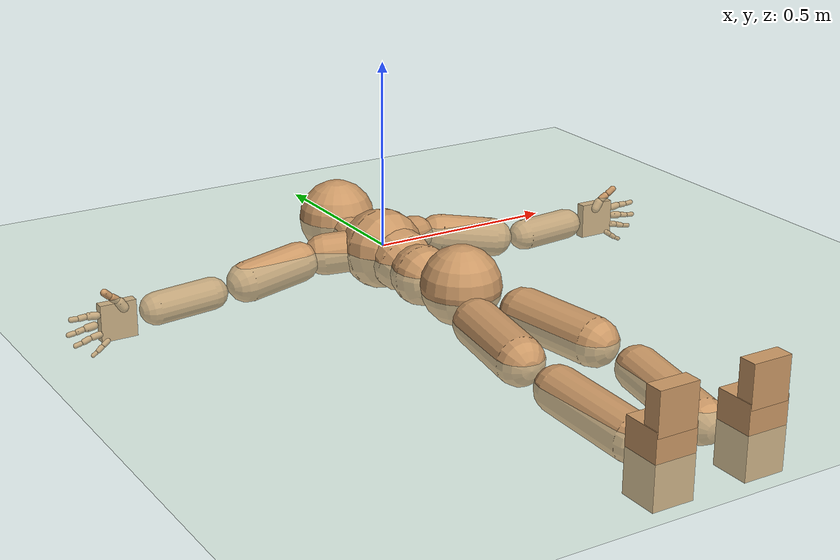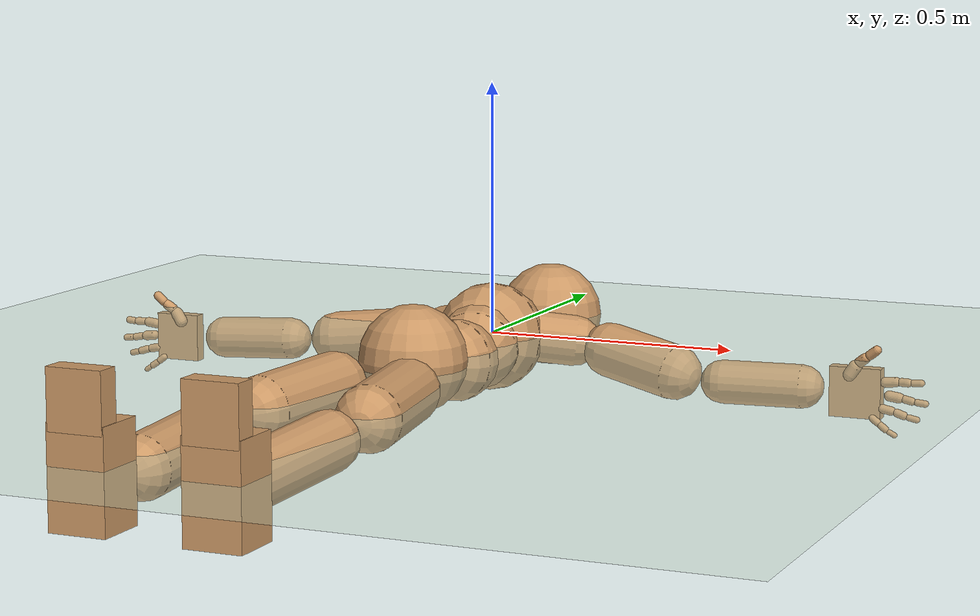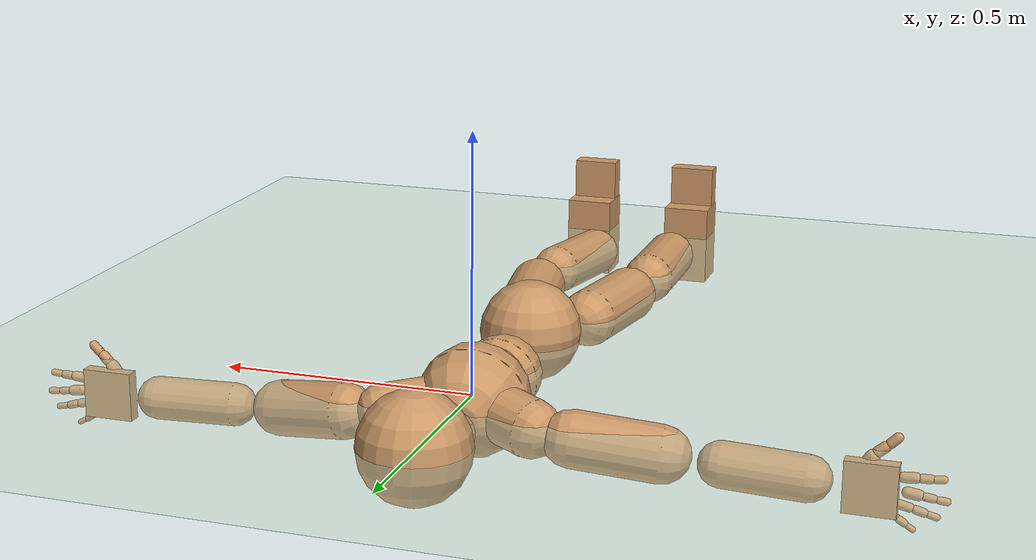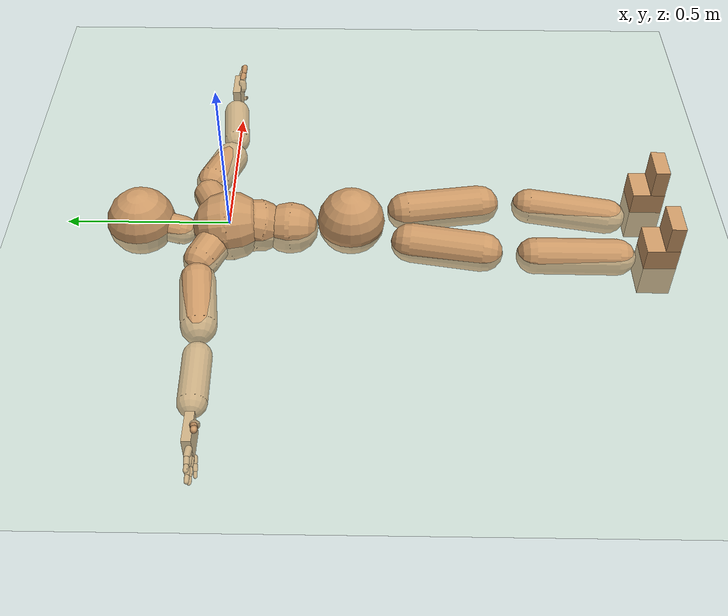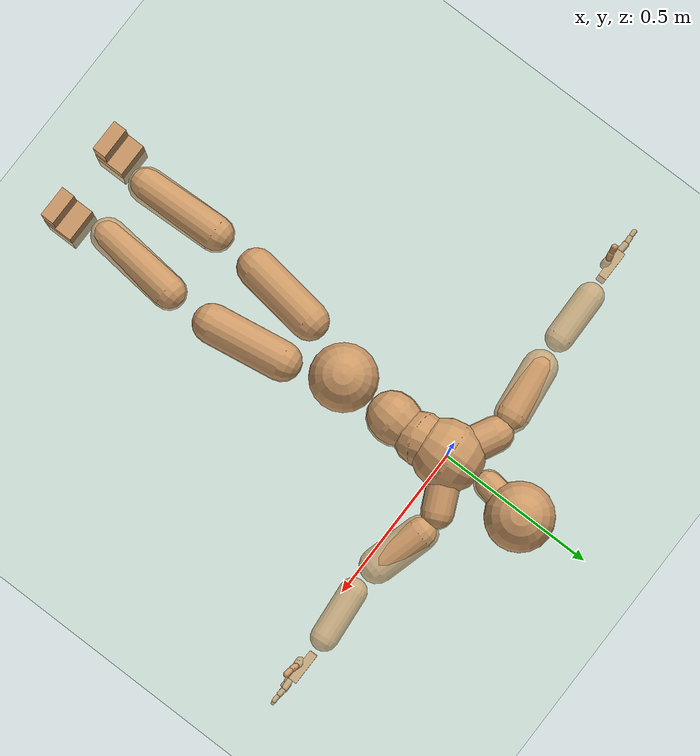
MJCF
<mujoco model="humanoid">
  <compiler coordinate="local"/>
  <default>
    <joint damping="0.0" armature="0.01" stiffness="0.0" limited="true"/>
    <geom conaffinity="1" condim="3" contype="7" margin="0.001" rgba="0.8 0.6 .4 1"/>
  </default>
  <asset>
    <texture type="skybox" builtin="gradient" rgb1=".4 .5 .6" rgb2="0 0 0" width="100" height="100"/>
    <texture builtin="flat" height="1278" mark="cross" markrgb="1 1 1" name="texgeom" random="0.01" rgb1="0.8 0.6 0.4" rgb2="0.8 0.6 0.4" type="cube" width="127"/>
    <texture builtin="checker" height="100" name="texplane" rgb1="0 0 0" rgb2="0.8 0.8 0.8" type="2d" width="100"/>
    <material name="MatPlane" reflectance="0.5" shininess="1" specular="1" texrepeat="60 60" texture="texplane"/>
    <material name="geom" texture="texgeom" texuniform="true"/>
  </asset>
  <worldbody>
    <light cutoff="100" diffuse="1 1 1" dir="-0 0 -1.3" directional="true" exponent="1" pos="0 0 1.3" specular=".1 .1 .1"/>
    <geom conaffinity="1" condim="3" name="floor" pos="0 0 0" rgba="0.8 0.9 0.8 1" size="100 100 .2" type="plane" material="MatPlane"/>
    <body name="Pelvis" pos="0.0029 -0.3765 0.0123">
      <freejoint name="Pelvis"/>
      <geom type="sphere" contype="1" conaffinity="1" density="4629.6296296296305" size="0.1033" pos="0.0000 0.0000 0.0000" name="Pelvis"/>
      <body name="L_Hip" pos="0.0578 -0.0965 -0.0238">
        <joint name="L_Hip_x" type="hinge" pos="0 0 0" axis="1 0 0" user="250 2.5 1 500 10 2" armature="0.01" range="-90.0000 90.0000" damping="0" stiffness="0"/>
        <joint name="L_Hip_y" type="hinge" pos="0 0 0" axis="0 1 0" user="250 2.5 1 500 10 2" armature="0.01" range="-90.0000 90.0000" damping="0" stiffness="0"/>
        <joint name="L_Hip_z" type="hinge" pos="0 0 0" axis="0 0 1" user="250 2.5 1 500 10 2" armature="0.01" range="-90.0000 90.0000" damping="0" stiffness="0"/>
        <geom type="capsule" contype="1" conaffinity="1" density="2040.816327" fromto="0.0122 -0.0764 -0.0005 0.0487 -0.3057 -0.0022" size="0.0608" name="L_Hip"/>
        <body name="L_Knee" pos="0.0609 -0.3821 -0.0027">
          <joint name="L_Knee_x" type="hinge" pos="0 0 0" axis="1 0 0" user="250 2.5 1 500 10 2" armature="0.01" range="-180.0000 180.0000" damping="0" stiffness="0"/>
          <joint name="L_Knee_y" type="hinge" pos="0 0 0" axis="0 1 0" user="250 2.5 1 500 10 2" armature="0.01" range="-5.6250 5.6250" damping="0" stiffness="0"/>
          <joint name="L_Knee_z" type="hinge" pos="0 0 0" axis="0 0 1" user="250 2.5 1 500 10 2" armature="0.01" range="-5.6250 5.6250" damping="0" stiffness="0"/>
          <geom type="capsule" contype="1" conaffinity="1" density="1234.567901" fromto="-0.0086 -0.0820 -0.0062 -0.0345 -0.3281 -0.0247" size="0.0543" name="L_Knee"/>
          <body name="L_Ankle" pos="-0.0431 -0.4101 -0.0309">
            <joint name="L_Ankle_x" type="hinge" pos="0 0 0" axis="1 0 0" user="150 2.5 1 500 10 2" armature="0.01" range="-90.0000 90.0000" damping="0" stiffness="0"/>
            <joint name="L_Ankle_y" type="hinge" pos="0 0 0" axis="0 1 0" user="150 2.5 1 500 10 2" armature="0.01" range="-90.0000 90.0000" damping="0" stiffness="0"/>
            <joint name="L_Ankle_z" type="hinge" pos="0 0 0" axis="0 0 1" user="150 2.5 1 500 10 2" armature="0.01" range="-90.0000 90.0000" damping="0" stiffness="0"/>
            <geom type="box" density="452.697464" pos="0.0427 -0.0296 0.0244" size="0.0522 0.0484 0.0892" quat="1.0000 0.0000 0.0000 0.0000" name="L_Ankle"/>
            <body name="L_Toe" pos="0.0495 -0.0599 0.1234">
              <joint name="L_Toe_x" type="hinge" pos="0 0 0" axis="1 0 0" user="150 1 1 500 1 1" armature="0.01" range="-90.0000 90.0000" damping="0" stiffness="0"/>
              <joint name="L_Toe_y" type="hinge" pos="0 0 0" axis="0 1 0" user="150 1 1 500 1 1" armature="0.01" range="-45.0000 45.0000" damping="0" stiffness="0"/>
              <joint name="L_Toe_z" type="hinge" pos="0 0 0" axis="0 0 1" user="150 1 1 500 1 1" armature="0.01" range="-45.0000 45.0000" damping="0" stiffness="0"/>
              <geom type="box" density="424.81663" pos="-0.0068 0.0034 0.0270" size="0.0501 0.0216 0.0521" quat="1.0000 0.0000 0.0000 0.0000" name="L_Toe"/>
            </body>
          </body>
        </body>
      </body>
      <body name="R_Hip" pos="-0.0626 -0.1093 -0.0175">
        <joint name="R_Hip_x" type="hinge" pos="0 0 0" axis="1 0 0" user="250 2.5 1 500 10 2" armature="0.01" range="-90.0000 90.0000" damping="0" stiffness="0"/>
        <joint name="R_Hip_y" type="hinge" pos="0 0 0" axis="0 1 0" user="250 2.5 1 500 10 2" armature="0.01" range="-90.0000 90.0000" damping="0" stiffness="0"/>
        <joint name="R_Hip_z" type="hinge" pos="0 0 0" axis="0 0 1" user="250 2.5 1 500 10 2" armature="0.01" range="-90.0000 90.0000" damping="0" stiffness="0"/>
        <geom type="capsule" contype="1" conaffinity="1" density="2040.816327" fromto="-0.0100 -0.0728 -0.0023 -0.0401 -0.2910 -0.0091" size="0.0601" name="R_Hip"/>
        <body name="R_Knee" pos="-0.0501 -0.3638 -0.0114">
          <joint name="R_Knee_x" type="hinge" pos="0 0 0" axis="1 0 0" user="250 2.5 1 500 10 2" armature="0.01" range="-180.0000 180.0000" damping="0" stiffness="0"/>
          <joint name="R_Knee_y" type="hinge" pos="0 0 0" axis="0 1 0" user="250 2.5 1 500 10 2" armature="0.01" range="-5.6250 5.6250" damping="0" stiffness="0"/>
          <joint name="R_Knee_z" type="hinge" pos="0 0 0" axis="0 0 1" user="250 2.5 1 500 10 2" armature="0.01" range="-5.6250 5.6250" damping="0" stiffness="0"/>
          <geom type="capsule" contype="1" conaffinity="1" density="1234.567901" fromto="0.0028 -0.0836 -0.0038 0.0111 -0.3346 -0.0152" size="0.0559" name="R_Knee"/>
          <body name="R_Ankle" pos="0.0139 -0.4182 -0.019">
            <joint name="R_Ankle_x" type="hinge" pos="0 0 0" axis="1 0 0" user="150 1 1 500 10 2" armature="0.01" range="-90.0000 90.0000" damping="0" stiffness="0"/>
            <joint name="R_Ankle_y" type="hinge" pos="0 0 0" axis="0 1 0" user="150 1 1 500 10 2" armature="0.01" range="-90.0000 90.0000" damping="0" stiffness="0"/>
            <joint name="R_Ankle_z" type="hinge" pos="0 0 0" axis="0 0 1" user="150 1 1 500 10 2" armature="0.01" range="-90.0000 90.0000" damping="0" stiffness="0"/>
            <geom type="box" density="452.699589" pos="-0.0253 -0.0270 0.0150" size="0.0522 0.0484 0.0892" quat="1.0000 0.0000 0.0000 0.0000" name="R_Ankle"/>
            <body name="R_Toe" pos="-0.0405 -0.06 0.1244">
              <joint name="R_Toe_x" type="hinge" pos="0 0 0" axis="1 0 0" user="150 1 1 500 1 1" armature="0.01" range="-90.0000 90.0000" damping="0" stiffness="0"/>
              <joint name="R_Toe_y" type="hinge" pos="0 0 0" axis="0 1 0" user="150 1 1 500 1 1" armature="0.01" range="-45.0000 45.0000" damping="0" stiffness="0"/>
              <joint name="R_Toe_z" type="hinge" pos="0 0 0" axis="0 0 1" user="150 1 1 500 1 1" armature="0.01" range="-45.0000 45.0000" damping="0" stiffness="0"/>
              <geom type="box" density="424.817701" pos="0.0152 0.0061 0.0166" size="0.0501 0.0216 0.0521" quat="1.0000 0.0000 0.0000 0.0000" name="R_Toe"/>
            </body>
          </body>
        </body>
      </body>
      <body name="Torso" pos="-0.0029 0.116 -0.0318">
        <joint name="Torso_x" type="hinge" pos="0 0 0" axis="1 0 0" user="500 5 1 500 10 2" armature="0.01" range="-60.0000 60.0000" damping="0" stiffness="0"/>
        <joint name="Torso_y" type="hinge" pos="0 0 0" axis="0 1 0" user="500 5 1 500 10 2" armature="0.01" range="-60.0000 60.0000" damping="0" stiffness="0"/>
        <joint name="Torso_z" type="hinge" pos="0 0 0" axis="0 0 1" user="500 5 1 500 10 2" armature="0.01" range="-60.0000 60.0000" damping="0" stiffness="0"/>
        <geom type="capsule" contype="1" conaffinity="1" density="2040.816327" fromto="0.0049 0.0653 -0.0033 0.0060 0.0798 -0.0041" size="0.0792" name="Torso"/>
        <body name="Spine" pos="0.0109 0.1451 -0.0074">
          <joint name="Spine_x" type="hinge" pos="0 0 0" axis="1 0 0" user="500 5 1 500 10 2" armature="0.01" range="-60.0000 60.0000" damping="0" stiffness="0"/>
          <joint name="Spine_y" type="hinge" pos="0 0 0" axis="0 1 0" user="500 5 1 500 10 2" armature="0.01" range="-60.0000 60.0000" damping="0" stiffness="0"/>
          <joint name="Spine_z" type="hinge" pos="0 0 0" axis="0 0 1" user="500 5 1 500 10 2" armature="0.01" range="-60.0000 60.0000" damping="0" stiffness="0"/>
          <geom type="capsule" contype="1" conaffinity="1" density="2040.816327" fromto="-0.0054 0.0262 0.0119 -0.0065 0.0320 0.0145" size="0.0822" name="Spine"/>
          <body name="Chest" pos="-0.0119 0.0582 0.0263">
            <joint name="Chest_x" type="hinge" pos="0 0 0" axis="1 0 0" user="500 5 1 500 10 2" armature="0.01" range="-60.0000 60.0000" damping="0" stiffness="0"/>
            <joint name="Chest_y" type="hinge" pos="0 0 0" axis="0 1 0" user="500 5 1 500 10 2" armature="0.01" range="-60.0000 60.0000" damping="0" stiffness="0"/>
            <joint name="Chest_z" type="hinge" pos="0 0 0" axis="0 0 1" user="500 5 1 500 10 2" armature="0.01" range="-60.0000 60.0000" damping="0" stiffness="0"/>
            <geom type="capsule" contype="1" conaffinity="1" density="2040.816327" fromto="-0.0024 0.0520 -0.0065 -0.0029 0.0635 -0.0080" size="0.1067" name="Chest"/>
            <body name="Neck" pos="-0.0133 0.1711 -0.0274">
              <joint name="Neck_x" type="hinge" pos="0 0 0" axis="1 0 0" user="150 1 1 250 50 4" armature="0.01" range="-180.0000 180.0000" damping="0" stiffness="0"/>
              <joint name="Neck_y" type="hinge" pos="0 0 0" axis="0 1 0" user="150 1 1 250 50 4" armature="0.01" range="-180.0000 180.0000" damping="0" stiffness="0"/>
              <joint name="Neck_z" type="hinge" pos="0 0 0" axis="0 0 1" user="150 1 1 250 50 4" armature="0.01" range="-180.0000 180.0000" damping="0" stiffness="0"/>
              <geom type="capsule" contype="1" conaffinity="1" density="1000" fromto="0.0053 0.0322 0.0047 0.0213 0.1288 0.0186" size="0.0447" name="Neck"/>
              <body name="Head" pos="0.0266 0.161 0.0233">
                <joint name="Head_x" type="hinge" pos="0 0 0" axis="1 0 0" user="150 1 1 250 50 4" armature="0.01" range="-90.0000 90.0000" damping="0" stiffness="0"/>
                <joint name="Head_y" type="hinge" pos="0 0 0" axis="0 1 0" user="150 1 1 250 50 4" armature="0.01" range="-90.0000 90.0000" damping="0" stiffness="0"/>
                <joint name="Head_z" type="hinge" pos="0 0 0" axis="0 0 1" user="150 1 1 250 50 4" armature="0.01" range="-90.0000 90.0000" damping="0" stiffness="0"/>
                <geom type="sphere" contype="1" conaffinity="1" density="1000" size="0.1053" pos="0.0000 0.0000 0.0000" name="Head"/>
              </body>
            </body>
            <body name="L_Thorax" pos="0.0475 0.0881 -0.0049">
              <joint name="L_Thorax_x" type="hinge" pos="0 0 0" axis="1 0 0" user="200 2 1 500 50 4" armature="0.01" range="-180.0000 180.0000" damping="0" stiffness="0"/>
              <joint name="L_Thorax_y" type="hinge" pos="0 0 0" axis="0 1 0" user="200 2 1 500 50 4" armature="0.01" range="-180.0000 180.0000" damping="0" stiffness="0"/>
              <joint name="L_Thorax_z" type="hinge" pos="0 0 0" axis="0 0 1" user="200 2 1 500 50 4" armature="0.01" range="-180.0000 180.0000" damping="0" stiffness="0"/>
              <geom type="capsule" contype="1" conaffinity="1" density="1000" fromto="0.0251 0.0118 -0.0034 0.1005 0.0471 -0.0137" size="0.0507" name="L_Thorax"/>
              <body name="L_Shoulder" pos="0.1256 0.0588 -0.0172">
                <joint name="L_Shoulder_x" type="hinge" pos="0 0 0" axis="1 0 0" user="200 2 1 500 50 4" armature="0.01" range="-180.0000 180.0000" damping="0" stiffness="0"/>
                <joint name="L_Shoulder_y" type="hinge" pos="0 0 0" axis="0 1 0" user="200 2 1 500 50 4" armature="0.01" range="-180.0000 180.0000" damping="0" stiffness="0"/>
                <joint name="L_Shoulder_z" type="hinge" pos="0 0 0" axis="0 0 1" user="200 2 1 500 50 4" armature="0.01" range="-180.0000 180.0000" damping="0" stiffness="0"/>
                <geom type="capsule" contype="1" conaffinity="1" density="1000" fromto="0.0507 -0.0142 -0.0088 0.2027 -0.0568 -0.0351" size="0.0541" name="L_Shoulder"/>
                <body name="L_Elbow" pos="0.2534 -0.071 -0.0439">
                  <joint name="L_Elbow_x" type="hinge" pos="0 0 0" axis="1 0 0" user="150 1 1 150 10 2" armature="0.01" range="-720.0000 720.0000" damping="0" stiffness="0"/>
                  <joint name="L_Elbow_y" type="hinge" pos="0 0 0" axis="0 1 0" user="150 1 1 150 10 2" armature="0.01" range="-720.0000 720.0000" damping="0" stiffness="0"/>
                  <joint name="L_Elbow_z" type="hinge" pos="0 0 0" axis="0 0 1" user="150 1 1 150 10 2" armature="0.01" range="-720.0000 720.0000" damping="0" stiffness="0"/>
                  <geom type="capsule" contype="1" conaffinity="1" density="1000" fromto="0.0519 0.0049 0.0001 0.2076 0.0194 0.0005" size="0.0425" name="L_Elbow"/>
                  <body name="L_Wrist" pos="0.2595 0.0243 0.0006">
                    <joint name="L_Wrist_x" type="hinge" pos="0 0 0" axis="1 0 0" user="100 1 1 150 1 1" armature="0.01" range="-180.0000 180.0000" damping="0" stiffness="0"/>
                    <joint name="L_Wrist_y" type="hinge" pos="0 0 0" axis="0 1 0" user="100 1 1 150 1 1" armature="0.01" range="-180.0000 180.0000" damping="0" stiffness="0"/>
                    <joint name="L_Wrist_z" type="hinge" pos="0 0 0" axis="0 0 1" user="100 1 1 150 1 1" armature="0.01" range="-180.0000 180.0000" damping="0" stiffness="0"/>
                    <geom type="box" density="1218.306123" pos="0.0546 -0.0013 -0.0026" size="0.0504 0.0131 0.0487" quat="1.0000 0.0000 0.0000 0.0000" name="L_Wrist"/>
                    <body name="L_Index1" pos="0.1061 -0.0081 0.021">
                      <joint name="L_Index1_x" type="hinge" pos="0 0 0" axis="1 0 0" user="100 10 1 150" armature="0.01" range="-180.0000 180.0000" damping="0" stiffness="0"/>
                      <joint name="L_Index1_y" type="hinge" pos="0 0 0" axis="0 1 0" user="100 10 1 150" armature="0.01" range="-180.0000 180.0000" damping="0" stiffness="0"/>
                      <joint name="L_Index1_z" type="hinge" pos="0 0 0" axis="0 0 1" user="100 10 1 150" armature="0.01" range="-180.0000 180.0000" damping="0" stiffness="0"/>
                      <geom type="capsule" contype="1" conaffinity="1" density="1000" fromto="0.0066 0.0005 0.0006 0.0264 0.0019 0.0024" size="0.0098" name="L_Index1"/>
                      <body name="L_Index2" pos="0.033 0.0024 0.0029">
                        <joint name="L_Index2_x" type="hinge" pos="0 0 0" axis="1 0 0" user="100 10 1 150" armature="0.01" range="-180.0000 180.0000" damping="0" stiffness="0"/>
                        <joint name="L_Index2_y" type="hinge" pos="0 0 0" axis="0 1 0" user="100 10 1 150" armature="0.01" range="-180.0000 180.0000" damping="0" stiffness="0"/>
                        <joint name="L_Index2_z" type="hinge" pos="0 0 0" axis="0 0 1" user="100 10 1 150" armature="0.01" range="-180.0000 180.0000" damping="0" stiffness="0"/>
                        <geom type="capsule" contype="1" conaffinity="1" density="1000" fromto="0.0046 -0.0005 -0.0001 0.0186 -0.0020 -0.0002" size="0.0081" name="L_Index2"/>
                        <body name="L_Index3" pos="0.0232 -0.0025 -0.0003">
                          <joint name="L_Index3_x" type="hinge" pos="0 0 0" axis="1 0 0" user="100 10 1 150" armature="0.01" range="-180.0000 180.0000" damping="0" stiffness="0"/>
                          <joint name="L_Index3_y" type="hinge" pos="0 0 0" axis="0 1 0" user="100 10 1 150" armature="0.01" range="-180.0000 180.0000" damping="0" stiffness="0"/>
                          <joint name="L_Index3_z" type="hinge" pos="0 0 0" axis="0 0 1" user="100 10 1 150" armature="0.01" range="-180.0000 180.0000" damping="0" stiffness="0"/>
                          <geom type="capsule" contype="1" conaffinity="1" density="1000" fromto="0.0050 -0.0001 0.0003 0.0202 -0.0004 0.0014" size="0.0068" name="L_Index3"/>
                        </body>
                      </body>
                    </body>
                    <body name="L_Middle1" pos="0.1141 -0.0058 -0.0038">
                      <joint name="L_Middle1_x" type="hinge" pos="0 0 0" axis="1 0 0" user="100 10 1 150" armature="0.01" range="-180.0000 180.0000" damping="0" stiffness="0"/>
                      <joint name="L_Middle1_y" type="hinge" pos="0 0 0" axis="0 1 0" user="100 10 1 150" armature="0.01" range="-180.0000 180.0000" damping="0" stiffness="0"/>
                      <joint name="L_Middle1_z" type="hinge" pos="0 0 0" axis="0 0 1" user="100 10 1 150" armature="0.01" range="-180.0000 180.0000" damping="0" stiffness="0"/>
                      <geom type="capsule" contype="1" conaffinity="1" density="1000" fromto="0.0063 0.0002 -0.0008 0.0253 0.0006 -0.0033" size="0.01" name="L_Middle1"/>
                      <body name="L_Middle2" pos="0.0317 0.0008 -0.0041">
                        <joint name="L_Middle2_x" type="hinge" pos="0 0 0" axis="1 0 0" user="100 10 1 150" armature="0.01" range="-180.0000 180.0000" damping="0" stiffness="0"/>
                        <joint name="L_Middle2_y" type="hinge" pos="0 0 0" axis="0 1 0" user="100 10 1 150" armature="0.01" range="-180.0000 180.0000" damping="0" stiffness="0"/>
                        <joint name="L_Middle2_z" type="hinge" pos="0 0 0" axis="0 0 1" user="100 10 1 150" armature="0.01" range="-180.0000 180.0000" damping="0" stiffness="0"/>
                        <geom type="capsule" contype="1" conaffinity="1" density="1000" fromto="0.0048 -0.0004 -0.0009 0.0193 -0.0018 -0.0035" size="0.0075" name="L_Middle2"/>
                        <body name="L_Middle3" pos="0.0242 -0.0022 -0.0043">
                          <joint name="L_Middle3_x" type="hinge" pos="0 0 0" axis="1 0 0" user="100 10 1 150" armature="0.01" range="-180.0000 180.0000" damping="0" stiffness="0"/>
                          <joint name="L_Middle3_y" type="hinge" pos="0 0 0" axis="0 1 0" user="100 10 1 150" armature="0.01" range="-180.0000 180.0000" damping="0" stiffness="0"/>
                          <joint name="L_Middle3_z" type="hinge" pos="0 0 0" axis="0 0 1" user="100 10 1 150" armature="0.01" range="-180.0000 180.0000" damping="0" stiffness="0"/>
                          <geom type="capsule" contype="1" conaffinity="1" density="1000" fromto="0.0052 -0.0000 -0.0005 0.0209 -0.0002 -0.0019" size="0.0065" name="L_Middle3"/>
                        </body>
                      </body>
                    </body>
                    <body name="L_Pinky1" pos="0.0879 -0.0144 -0.0459">
                      <joint name="L_Pinky1_x" type="hinge" pos="0 0 0" axis="1 0 0" user="100 10 1 150" armature="0.01" range="-180.0000 180.0000" damping="0" stiffness="0"/>
                      <joint name="L_Pinky1_y" type="hinge" pos="0 0 0" axis="0 1 0" user="100 10 1 150" armature="0.01" range="-180.0000 180.0000" damping="0" stiffness="0"/>
                      <joint name="L_Pinky1_z" type="hinge" pos="0 0 0" axis="0 0 1" user="100 10 1 150" armature="0.01" range="-180.0000 180.0000" damping="0" stiffness="0"/>
                      <geom type="capsule" contype="1" conaffinity="1" density="1000" fromto="0.0033 -0.0003 -0.0025 0.0133 -0.0011 -0.0100" size="0.0071" name="L_Pinky1"/>
                      <body name="L_Pinky2" pos="0.0166 -0.0013 -0.0125">
                        <joint name="L_Pinky2_x" type="hinge" pos="0 0 0" axis="1 0 0" user="100 10 1 150" armature="0.01" range="-180.0000 180.0000" damping="0" stiffness="0"/>
                        <joint name="L_Pinky2_y" type="hinge" pos="0 0 0" axis="0 1 0" user="100 10 1 150" armature="0.01" range="-180.0000 180.0000" damping="0" stiffness="0"/>
                        <joint name="L_Pinky2_z" type="hinge" pos="0 0 0" axis="0 0 1" user="100 10 1 150" armature="0.01" range="-180.0000 180.0000" damping="0" stiffness="0"/>
                        <geom type="capsule" contype="1" conaffinity="1" density="1000" fromto="0.0033 -0.0004 -0.0023 0.0131 -0.0016 -0.0092" size="0.0068" name="L_Pinky2"/>
                        <body name="L_Pinky3" pos="0.0164 -0.0019 -0.0115">
                          <joint name="L_Pinky3_x" type="hinge" pos="0 0 0" axis="1 0 0" user="100 10 1 150" armature="0.01" range="-180.0000 180.0000" damping="0" stiffness="0"/>
                          <joint name="L_Pinky3_y" type="hinge" pos="0 0 0" axis="0 1 0" user="100 10 1 150" armature="0.01" range="-180.0000 180.0000" damping="0" stiffness="0"/>
                          <joint name="L_Pinky3_z" type="hinge" pos="0 0 0" axis="0 0 1" user="100 10 1 150" armature="0.01" range="-180.0000 180.0000" damping="0" stiffness="0"/>
                          <geom type="capsule" contype="1" conaffinity="1" density="1000" fromto="0.0037 0.0000 -0.0019 0.0147 0.0000 -0.0076" size="0.0052" name="L_Pinky3"/>
                        </body>
                      </body>
                    </body>
                    <body name="L_Ring1" pos="0.1018 -0.0088 -0.0286">
                      <joint name="L_Ring1_x" type="hinge" pos="0 0 0" axis="1 0 0" user="100 10 1 150" armature="0.01" range="-180.0000 180.0000" damping="0" stiffness="0"/>
                      <joint name="L_Ring1_y" type="hinge" pos="0 0 0" axis="0 1 0" user="100 10 1 150" armature="0.01" range="-180.0000 180.0000" damping="0" stiffness="0"/>
                      <joint name="L_Ring1_z" type="hinge" pos="0 0 0" axis="0 0 1" user="100 10 1 150" armature="0.01" range="-180.0000 180.0000" damping="0" stiffness="0"/>
                      <geom type="capsule" contype="1" conaffinity="1" density="1000" fromto="0.0059 0.0003 -0.0011 0.0235 0.0012 -0.0044" size="0.0085" name="L_Ring1"/>
                      <body name="L_Ring2" pos="0.0294 0.0015 -0.0055">
                        <joint name="L_Ring2_x" type="hinge" pos="0 0 0" axis="1 0 0" user="100 10 1 150" armature="0.01" range="-180.0000 180.0000" damping="0" stiffness="0"/>
                        <joint name="L_Ring2_y" type="hinge" pos="0 0 0" axis="0 1 0" user="100 10 1 150" armature="0.01" range="-180.0000 180.0000" damping="0" stiffness="0"/>
                        <joint name="L_Ring2_z" type="hinge" pos="0 0 0" axis="0 0 1" user="100 10 1 150" armature="0.01" range="-180.0000 180.0000" damping="0" stiffness="0"/>
                        <geom type="capsule" contype="1" conaffinity="1" density="1000" fromto="0.0047 -0.0003 -0.0015 0.0190 -0.0014 -0.0059" size="0.0078" name="L_Ring2"/>
                        <body name="L_Ring3" pos="0.0237 -0.0017 -0.0074">
                          <joint name="L_Ring3_x" type="hinge" pos="0 0 0" axis="1 0 0" user="100 10 1 150" armature="0.01" range="-180.0000 180.0000" damping="0" stiffness="0"/>
                          <joint name="L_Ring3_y" type="hinge" pos="0 0 0" axis="0 1 0" user="100 10 1 150" armature="0.01" range="-180.0000 180.0000" damping="0" stiffness="0"/>
                          <joint name="L_Ring3_z" type="hinge" pos="0 0 0" axis="0 0 1" user="100 10 1 150" armature="0.01" range="-180.0000 180.0000" damping="0" stiffness="0"/>
                          <geom type="capsule" contype="1" conaffinity="1" density="1000" fromto="0.0051 0.0001 -0.0011 0.0206 0.0002 -0.0043" size="0.0061" name="L_Ring3"/>
                        </body>
                      </body>
                    </body>
                    <body name="L_Thumb1" pos="0.0422 -0.019 0.0279">
                      <joint name="L_Thumb1_x" type="hinge" pos="0 0 0" axis="1 0 0" user="100 10 1 150" armature="0.01" range="-180.0000 180.0000" damping="0" stiffness="0"/>
                      <joint name="L_Thumb1_y" type="hinge" pos="0 0 0" axis="0 1 0" user="100 10 1 150" armature="0.01" range="-180.0000 180.0000" damping="0" stiffness="0"/>
                      <joint name="L_Thumb1_z" type="hinge" pos="0 0 0" axis="0 0 1" user="100 10 1 150" armature="0.01" range="-180.0000 180.0000" damping="0" stiffness="0"/>
                      <geom type="capsule" contype="1" conaffinity="1" density="1000" fromto="0.0035 0.0003 0.0053 0.0141 0.0010 0.0212" size="0.0128" name="L_Thumb1"/>
                      <body name="L_Thumb2" pos="0.0177 0.0013 0.0265">
                        <joint name="L_Thumb2_x" type="hinge" pos="0 0 0" axis="1 0 0" user="100 10 1 150" armature="0.01" range="-180.0000 180.0000" damping="0" stiffness="0"/>
                        <joint name="L_Thumb2_y" type="hinge" pos="0 0 0" axis="0 1 0" user="100 10 1 150" armature="0.01" range="-180.0000 180.0000" damping="0" stiffness="0"/>
                        <joint name="L_Thumb2_z" type="hinge" pos="0 0 0" axis="0 0 1" user="100 10 1 150" armature="0.01" range="-180.0000 180.0000" damping="0" stiffness="0"/>
                        <geom type="capsule" contype="1" conaffinity="1" density="1000" fromto="0.0043 -0.0011 0.0032 0.0170 -0.0043 0.0129" size="0.0102" name="L_Thumb2"/>
                        <body name="L_Thumb3" pos="0.0213 -0.0054 0.0161">
                          <joint name="L_Thumb3_x" type="hinge" pos="0 0 0" axis="1 0 0" user="100 10 1 150" armature="0.01" range="-180.0000 180.0000" damping="0" stiffness="0"/>
                          <joint name="L_Thumb3_y" type="hinge" pos="0 0 0" axis="0 1 0" user="100 10 1 150" armature="0.01" range="-180.0000 180.0000" damping="0" stiffness="0"/>
                          <joint name="L_Thumb3_z" type="hinge" pos="0 0 0" axis="0 0 1" user="100 10 1 150" armature="0.01" range="-180.0000 180.0000" damping="0" stiffness="0"/>
                          <geom type="capsule" contype="1" conaffinity="1" density="1000" fromto="0.0047 -0.0007 0.0036 0.0186 -0.0027 0.0145" size="0.0092" name="L_Thumb3"/>
                        </body>
                      </body>
                    </body>
                  </body>
                </body>
              </body>
            </body>
            <body name="R_Thorax" pos="-0.0501 0.0874 -0.0111">
              <joint name="R_Thorax_x" type="hinge" pos="0 0 0" axis="1 0 0" user="200 2 1 150 10 2" armature="0.01" range="-180.0000 180.0000" damping="0" stiffness="0"/>
              <joint name="R_Thorax_y" type="hinge" pos="0 0 0" axis="0 1 0" user="200 2 1 150 10 2" armature="0.01" range="-180.0000 180.0000" damping="0" stiffness="0"/>
              <joint name="R_Thorax_z" type="hinge" pos="0 0 0" axis="0 0 1" user="200 2 1 150 10 2" armature="0.01" range="-180.0000 180.0000" damping="0" stiffness="0"/>
              <geom type="capsule" contype="1" conaffinity="1" density="1000" fromto="-0.0217 0.0108 -0.0028 -0.0868 0.0432 -0.0112" size="0.0557" name="R_Thorax"/>
              <body name="R_Shoulder" pos="-0.1085 0.054 -0.014">
                <joint name="R_Shoulder_x" type="hinge" pos="0 0 0" axis="1 0 0" user="200 2 1 250 10 2" armature="0.01" range="-180.0000 180.0000" damping="0" stiffness="0"/>
                <joint name="R_Shoulder_y" type="hinge" pos="0 0 0" axis="0 1 0" user="200 2 1 250 10 2" armature="0.01" range="-180.0000 180.0000" damping="0" stiffness="0"/>
                <joint name="R_Shoulder_z" type="hinge" pos="0 0 0" axis="0 0 1" user="200 2 1 250 10 2" armature="0.01" range="-180.0000 180.0000" damping="0" stiffness="0"/>
                <geom type="capsule" contype="1" conaffinity="1" density="1000" fromto="-0.0542 -0.0067 -0.0056 -0.2168 -0.0266 -0.0223" size="0.054" name="R_Shoulder"/>
                <body name="R_Elbow" pos="-0.271 -0.0333 -0.0278">
                  <joint name="R_Elbow_x" type="hinge" pos="0 0 0" axis="1 0 0" user="150 1 1 150 10 2" armature="0.01" range="-720.0000 720.0000" damping="0" stiffness="0"/>
                  <joint name="R_Elbow_y" type="hinge" pos="0 0 0" axis="0 1 0" user="150 1 1 150 10 2" armature="0.01" range="-720.0000 720.0000" damping="0" stiffness="0"/>
                  <joint name="R_Elbow_z" type="hinge" pos="0 0 0" axis="0 0 1" user="150 1 1 150 10 2" armature="0.01" range="-720.0000 720.0000" damping="0" stiffness="0"/>
                  <geom type="capsule" contype="1" conaffinity="1" density="1000" fromto="-0.0513 -0.0009 -0.0025 -0.2051 -0.0037 -0.0101" size="0.0429" name="R_Elbow"/>
                  <body name="R_Wrist" pos="-0.2564 -0.0047 -0.0126">
                    <joint name="R_Wrist_x" type="hinge" pos="0 0 0" axis="1 0 0" user="100 1 1 150 1 1" armature="0.01" range="-180.0000 180.0000" damping="0" stiffness="0"/>
                    <joint name="R_Wrist_y" type="hinge" pos="0 0 0" axis="0 1 0" user="100 1 1 150 1 1" armature="0.01" range="-180.0000 180.0000" damping="0" stiffness="0"/>
                    <joint name="R_Wrist_z" type="hinge" pos="0 0 0" axis="0 0 1" user="100 1 1 150 1 1" armature="0.01" range="-180.0000 180.0000" damping="0" stiffness="0"/>
                    <geom type="box" density="1243.718939" pos="-0.0559 -0.0046 -0.0024" size="0.0476 0.0131 0.0487" quat="1.0000 0.0000 0.0000 0.0000" name="R_Wrist"/>
                    <body name="R_Index1" pos="-0.1042 -0.0114 0.0211">
                      <joint name="R_Index1_x" type="hinge" pos="0 0 0" axis="1 0 0" user="100 10 1 150" armature="0.01" range="-180.0000 180.0000" damping="0" stiffness="0"/>
                      <joint name="R_Index1_y" type="hinge" pos="0 0 0" axis="0 1 0" user="100 10 1 150" armature="0.01" range="-180.0000 180.0000" damping="0" stiffness="0"/>
                      <joint name="R_Index1_z" type="hinge" pos="0 0 0" axis="0 0 1" user="100 10 1 150" armature="0.01" range="-180.0000 180.0000" damping="0" stiffness="0"/>
                      <geom type="capsule" contype="1" conaffinity="1" density="1000" fromto="-0.0066 0.0005 0.0006 -0.0264 0.0019 0.0024" size="0.0098" name="R_Index1"/>
                      <body name="R_Index2" pos="-0.033 0.0024 0.0029">
                        <joint name="R_Index2_x" type="hinge" pos="0 0 0" axis="1 0 0" user="100 10 1 150" armature="0.01" range="-180.0000 180.0000" damping="0" stiffness="0"/>
                        <joint name="R_Index2_y" type="hinge" pos="0 0 0" axis="0 1 0" user="100 10 1 150" armature="0.01" range="-180.0000 180.0000" damping="0" stiffness="0"/>
                        <joint name="R_Index2_z" type="hinge" pos="0 0 0" axis="0 0 1" user="100 10 1 150" armature="0.01" range="-180.0000 180.0000" damping="0" stiffness="0"/>
                        <geom type="capsule" contype="1" conaffinity="1" density="1000" fromto="-0.0046 -0.0005 -0.0001 -0.0186 -0.0020 -0.0002" size="0.0081" name="R_Index2"/>
                        <body name="R_Index3" pos="-0.0232 -0.0025 -0.0003">
                          <joint name="R_Index3_x" type="hinge" pos="0 0 0" axis="1 0 0" user="100 10 1 150" armature="0.01" range="-180.0000 180.0000" damping="0" stiffness="0"/>
                          <joint name="R_Index3_y" type="hinge" pos="0 0 0" axis="0 1 0" user="100 10 1 150" armature="0.01" range="-180.0000 180.0000" damping="0" stiffness="0"/>
                          <joint name="R_Index3_z" type="hinge" pos="0 0 0" axis="0 0 1" user="100 10 1 150" armature="0.01" range="-180.0000 180.0000" damping="0" stiffness="0"/>
                          <geom type="capsule" contype="1" conaffinity="1" density="1000" fromto="-0.0042 -0.0001 0.0003 -0.0170 -0.0004 0.0014" size="0.0071" name="R_Index3"/>
                        </body>
                      </body>
                    </body>
                    <body name="R_Middle1" pos="-0.1121 -0.009 -0.0036">
                      <joint name="R_Middle1_x" type="hinge" pos="0 0 0" axis="1 0 0" user="100 10 1 150" armature="0.01" range="-180.0000 180.0000" damping="0" stiffness="0"/>
                      <joint name="R_Middle1_y" type="hinge" pos="0 0 0" axis="0 1 0" user="100 10 1 150" armature="0.01" range="-180.0000 180.0000" damping="0" stiffness="0"/>
                      <joint name="R_Middle1_z" type="hinge" pos="0 0 0" axis="0 0 1" user="100 10 1 150" armature="0.01" range="-180.0000 180.0000" damping="0" stiffness="0"/>
                      <geom type="capsule" contype="1" conaffinity="1" density="1000" fromto="-0.0063 0.0002 -0.0008 -0.0253 0.0006 -0.0033" size="0.01" name="R_Middle1"/>
                      <body name="R_Middle2" pos="-0.0317 0.0008 -0.0041">
                        <joint name="R_Middle2_x" type="hinge" pos="0 0 0" axis="1 0 0" user="100 10 1 150" armature="0.01" range="-180.0000 180.0000" damping="0" stiffness="0"/>
                        <joint name="R_Middle2_y" type="hinge" pos="0 0 0" axis="0 1 0" user="100 10 1 150" armature="0.01" range="-180.0000 180.0000" damping="0" stiffness="0"/>
                        <joint name="R_Middle2_z" type="hinge" pos="0 0 0" axis="0 0 1" user="100 10 1 150" armature="0.01" range="-180.0000 180.0000" damping="0" stiffness="0"/>
                        <geom type="capsule" contype="1" conaffinity="1" density="1000" fromto="-0.0048 -0.0004 -0.0009 -0.0193 -0.0018 -0.0035" size="0.0075" name="R_Middle2"/>
                        <body name="R_Middle3" pos="-0.0242 -0.0022 -0.0043">
                          <joint name="R_Middle3_x" type="hinge" pos="0 0 0" axis="1 0 0" user="100 10 1 150" armature="0.01" range="-180.0000 180.0000" damping="0" stiffness="0"/>
                          <joint name="R_Middle3_y" type="hinge" pos="0 0 0" axis="0 1 0" user="100 10 1 150" armature="0.01" range="-180.0000 180.0000" damping="0" stiffness="0"/>
                          <joint name="R_Middle3_z" type="hinge" pos="0 0 0" axis="0 0 1" user="100 10 1 150" armature="0.01" range="-180.0000 180.0000" damping="0" stiffness="0"/>
                          <geom type="capsule" contype="1" conaffinity="1" density="1000" fromto="-0.0044 -0.0000 -0.0005 -0.0177 -0.0002 -0.0019" size="0.0068" name="R_Middle3"/>
                        </body>
                      </body>
                    </body>
                    <body name="R_Pinky1" pos="-0.0859 -0.0176 -0.0458">
                      <joint name="R_Pinky1_x" type="hinge" pos="0 0 0" axis="1 0 0" user="100 10 1 150" armature="0.01" range="-180.0000 180.0000" damping="0" stiffness="0"/>
                      <joint name="R_Pinky1_y" type="hinge" pos="0 0 0" axis="0 1 0" user="100 10 1 150" armature="0.01" range="-180.0000 180.0000" damping="0" stiffness="0"/>
                      <joint name="R_Pinky1_z" type="hinge" pos="0 0 0" axis="0 0 1" user="100 10 1 150" armature="0.01" range="-180.0000 180.0000" damping="0" stiffness="0"/>
                      <geom type="capsule" contype="1" conaffinity="1" density="1000" fromto="-0.0033 -0.0003 -0.0025 -0.0133 -0.0011 -0.0100" size="0.0071" name="R_Pinky1"/>
                      <body name="R_Pinky2" pos="-0.0166 -0.0013 -0.0125">
                        <joint name="R_Pinky2_x" type="hinge" pos="0 0 0" axis="1 0 0" user="100 10 1 150" armature="0.01" range="-180.0000 180.0000" damping="0" stiffness="0"/>
                        <joint name="R_Pinky2_y" type="hinge" pos="0 0 0" axis="0 1 0" user="100 10 1 150" armature="0.01" range="-180.0000 180.0000" damping="0" stiffness="0"/>
                        <joint name="R_Pinky2_z" type="hinge" pos="0 0 0" axis="0 0 1" user="100 10 1 150" armature="0.01" range="-180.0000 180.0000" damping="0" stiffness="0"/>
                        <geom type="capsule" contype="1" conaffinity="1" density="1000" fromto="-0.0033 -0.0004 -0.0023 -0.0131 -0.0016 -0.0092" size="0.0068" name="R_Pinky2"/>
                        <body name="R_Pinky3" pos="-0.0164 -0.0019 -0.0115">
                          <joint name="R_Pinky3_x" type="hinge" pos="0 0 0" axis="1 0 0" user="100 10 1 150" armature="0.01" range="-180.0000 180.0000" damping="0" stiffness="0"/>
                          <joint name="R_Pinky3_y" type="hinge" pos="0 0 0" axis="0 1 0" user="100 10 1 150" armature="0.01" range="-180.0000 180.0000" damping="0" stiffness="0"/>
                          <joint name="R_Pinky3_z" type="hinge" pos="0 0 0" axis="0 0 1" user="100 10 1 150" armature="0.01" range="-180.0000 180.0000" damping="0" stiffness="0"/>
                          <geom type="capsule" contype="1" conaffinity="1" density="1000" fromto="-0.0029 0.0000 -0.0019 -0.0115 0.0000 -0.0076" size="0.0054" name="R_Pinky3"/>
                        </body>
                      </body>
                    </body>
                    <body name="R_Ring1" pos="-0.0999 -0.0121 -0.0284">
                      <joint name="R_Ring1_x" type="hinge" pos="0 0 0" axis="1 0 0" user="100 10 1 150" armature="0.01" range="-180.0000 180.0000" damping="0" stiffness="0"/>
                      <joint name="R_Ring1_y" type="hinge" pos="0 0 0" axis="0 1 0" user="100 10 1 150" armature="0.01" range="-180.0000 180.0000" damping="0" stiffness="0"/>
                      <joint name="R_Ring1_z" type="hinge" pos="0 0 0" axis="0 0 1" user="100 10 1 150" armature="0.01" range="-180.0000 180.0000" damping="0" stiffness="0"/>
                      <geom type="capsule" contype="1" conaffinity="1" density="1000" fromto="-0.0059 0.0003 -0.0011 -0.0235 0.0012 -0.0044" size="0.0085" name="R_Ring1"/>
                      <body name="R_Ring2" pos="-0.0294 0.0015 -0.0055">
                        <joint name="R_Ring2_x" type="hinge" pos="0 0 0" axis="1 0 0" user="100 10 1 150" armature="0.01" range="-180.0000 180.0000" damping="0" stiffness="0"/>
                        <joint name="R_Ring2_y" type="hinge" pos="0 0 0" axis="0 1 0" user="100 10 1 150" armature="0.01" range="-180.0000 180.0000" damping="0" stiffness="0"/>
                        <joint name="R_Ring2_z" type="hinge" pos="0 0 0" axis="0 0 1" user="100 10 1 150" armature="0.01" range="-180.0000 180.0000" damping="0" stiffness="0"/>
                        <geom type="capsule" contype="1" conaffinity="1" density="1000" fromto="-0.0047 -0.0003 -0.0015 -0.0190 -0.0014 -0.0059" size="0.0078" name="R_Ring2"/>
                        <body name="R_Ring3" pos="-0.0237 -0.0017 -0.0074">
                          <joint name="R_Ring3_x" type="hinge" pos="0 0 0" axis="1 0 0" user="100 10 1 150" armature="0.01" range="-180.0000 180.0000" damping="0" stiffness="0"/>
                          <joint name="R_Ring3_y" type="hinge" pos="0 0 0" axis="0 1 0" user="100 10 1 150" armature="0.01" range="-180.0000 180.0000" damping="0" stiffness="0"/>
                          <joint name="R_Ring3_z" type="hinge" pos="0 0 0" axis="0 0 1" user="100 10 1 150" armature="0.01" range="-180.0000 180.0000" damping="0" stiffness="0"/>
                          <geom type="capsule" contype="1" conaffinity="1" density="1000" fromto="-0.0043 0.0001 -0.0011 -0.0174 0.0002 -0.0043" size="0.0063" name="R_Ring3"/>
                        </body>
                      </body>
                    </body>
                    <body name="R_Thumb1" pos="-0.0402 -0.0223 0.0281">
                      <joint name="R_Thumb1_x" type="hinge" pos="0 0 0" axis="1 0 0" user="100 10 1 150" armature="0.01" range="-180.0000 180.0000" damping="0" stiffness="0"/>
                      <joint name="R_Thumb1_y" type="hinge" pos="0 0 0" axis="0 1 0" user="100 10 1 150" armature="0.01" range="-180.0000 180.0000" damping="0" stiffness="0"/>
                      <joint name="R_Thumb1_z" type="hinge" pos="0 0 0" axis="0 0 1" user="100 10 1 150" armature="0.01" range="-180.0000 180.0000" damping="0" stiffness="0"/>
                      <geom type="capsule" contype="1" conaffinity="1" density="1000" fromto="-0.0035 0.0003 0.0053 -0.0141 0.0010 0.0212" size="0.0128" name="R_Thumb1"/>
                      <body name="R_Thumb2" pos="-0.0177 0.0013 0.0265">
                        <joint name="R_Thumb2_x" type="hinge" pos="0 0 0" axis="1 0 0" user="100 10 1 150" armature="0.01" range="-180.0000 180.0000" damping="0" stiffness="0"/>
                        <joint name="R_Thumb2_y" type="hinge" pos="0 0 0" axis="0 1 0" user="100 10 1 150" armature="0.01" range="-180.0000 180.0000" damping="0" stiffness="0"/>
                        <joint name="R_Thumb2_z" type="hinge" pos="0 0 0" axis="0 0 1" user="100 10 1 150" armature="0.01" range="-180.0000 180.0000" damping="0" stiffness="0"/>
                        <geom type="capsule" contype="1" conaffinity="1" density="1000" fromto="-0.0043 -0.0011 0.0032 -0.0170 -0.0043 0.0129" size="0.0102" name="R_Thumb2"/>
                        <body name="R_Thumb3" pos="-0.0213 -0.0054 0.0161">
                          <joint name="R_Thumb3_x" type="hinge" pos="0 0 0" axis="1 0 0" user="100 10 1 150" armature="0.01" range="-180.0000 180.0000" damping="0" stiffness="0"/>
                          <joint name="R_Thumb3_y" type="hinge" pos="0 0 0" axis="0 1 0" user="100 10 1 150" armature="0.01" range="-180.0000 180.0000" damping="0" stiffness="0"/>
                          <joint name="R_Thumb3_z" type="hinge" pos="0 0 0" axis="0 0 1" user="100 10 1 150" armature="0.01" range="-180.0000 180.0000" damping="0" stiffness="0"/>
                          <geom type="capsule" contype="1" conaffinity="1" density="1000" fromto="-0.0039 -0.0007 0.0036 -0.0154 -0.0027 0.0145" size="0.0095" name="R_Thumb3"/>
                        </body>
                      </body>
                    </body>
                  </body>
                </body>
              </body>
            </body>
          </body>
        </body>
      </body>
    </body>
  </worldbody>
  <actuator>
    <motor name="L_Hip_x" joint="L_Hip_x" gear="1"/>
    <motor name="L_Hip_y" joint="L_Hip_y" gear="1"/>
    <motor name="L_Hip_z" joint="L_Hip_z" gear="1"/>
    <motor name="L_Knee_x" joint="L_Knee_x" gear="1"/>
    <motor name="L_Knee_y" joint="L_Knee_y" gear="1"/>
    <motor name="L_Knee_z" joint="L_Knee_z" gear="1"/>
    <motor name="L_Ankle_x" joint="L_Ankle_x" gear="1"/>
    <motor name="L_Ankle_y" joint="L_Ankle_y" gear="1"/>
    <motor name="L_Ankle_z" joint="L_Ankle_z" gear="1"/>
    <motor name="L_Toe_x" joint="L_Toe_x" gear="1"/>
    <motor name="L_Toe_y" joint="L_Toe_y" gear="1"/>
    <motor name="L_Toe_z" joint="L_Toe_z" gear="1"/>
    <motor name="R_Hip_x" joint="R_Hip_x" gear="1"/>
    <motor name="R_Hip_y" joint="R_Hip_y" gear="1"/>
    <motor name="R_Hip_z" joint="R_Hip_z" gear="1"/>
    <motor name="R_Knee_x" joint="R_Knee_x" gear="1"/>
    <motor name="R_Knee_y" joint="R_Knee_y" gear="1"/>
    <motor name="R_Knee_z" joint="R_Knee_z" gear="1"/>
    <motor name="R_Ankle_x" joint="R_Ankle_x" gear="1"/>
    <motor name="R_Ankle_y" joint="R_Ankle_y" gear="1"/>
    <motor name="R_Ankle_z" joint="R_Ankle_z" gear="1"/>
    <motor name="R_Toe_x" joint="R_Toe_x" gear="1"/>
    <motor name="R_Toe_y" joint="R_Toe_y" gear="1"/>
    <motor name="R_Toe_z" joint="R_Toe_z" gear="1"/>
    <motor name="Torso_x" joint="Torso_x" gear="1"/>
    <motor name="Torso_y" joint="Torso_y" gear="1"/>
    <motor name="Torso_z" joint="Torso_z" gear="1"/>
    <motor name="Spine_x" joint="Spine_x" gear="1"/>
    <motor name="Spine_y" joint="Spine_y" gear="1"/>
    <motor name="Spine_z" joint="Spine_z" gear="1"/>
    <motor name="Chest_x" joint="Chest_x" gear="1"/>
    <motor name="Chest_y" joint="Chest_y" gear="1"/>
    <motor name="Chest_z" joint="Chest_z" gear="1"/>
    <motor name="Neck_x" joint="Neck_x" gear="1"/>
    <motor name="Neck_y" joint="Neck_y" gear="1"/>
    <motor name="Neck_z" joint="Neck_z" gear="1"/>
    <motor name="Head_x" joint="Head_x" gear="1"/>
    <motor name="Head_y" joint="Head_y" gear="1"/>
    <motor name="Head_z" joint="Head_z" gear="1"/>
    <motor name="L_Thorax_x" joint="L_Thorax_x" gear="1"/>
    <motor name="L_Thorax_y" joint="L_Thorax_y" gear="1"/>
    <motor name="L_Thorax_z" joint="L_Thorax_z" gear="1"/>
    <motor name="L_Shoulder_x" joint="L_Shoulder_x" gear="1"/>
    <motor name="L_Shoulder_y" joint="L_Shoulder_y" gear="1"/>
    <motor name="L_Shoulder_z" joint="L_Shoulder_z" gear="1"/>
    <motor name="L_Elbow_x" joint="L_Elbow_x" gear="1"/>
    <motor name="L_Elbow_y" joint="L_Elbow_y" gear="1"/>
    <motor name="L_Elbow_z" joint="L_Elbow_z" gear="1"/>
    <motor name="L_Wrist_x" joint="L_Wrist_x" gear="1"/>
    <motor name="L_Wrist_y" joint="L_Wrist_y" gear="1"/>
    <motor name="L_Wrist_z" joint="L_Wrist_z" gear="1"/>
    <motor name="L_Index1_x" joint="L_Index1_x" gear="1"/>
    <motor name="L_Index1_y" joint="L_Index1_y" gear="1"/>
    <motor name="L_Index1_z" joint="L_Index1_z" gear="1"/>
    <motor name="L_Index2_x" joint="L_Index2_x" gear="1"/>
    <motor name="L_Index2_y" joint="L_Index2_y" gear="1"/>
    <motor name="L_Index2_z" joint="L_Index2_z" gear="1"/>
    <motor name="L_Index3_x" joint="L_Index3_x" gear="1"/>
    <motor name="L_Index3_y" joint="L_Index3_y" gear="1"/>
    <motor name="L_Index3_z" joint="L_Index3_z" gear="1"/>
    <motor name="L_Middle1_x" joint="L_Middle1_x" gear="1"/>
    <motor name="L_Middle1_y" joint="L_Middle1_y" gear="1"/>
    <motor name="L_Middle1_z" joint="L_Middle1_z" gear="1"/>
    <motor name="L_Middle2_x" joint="L_Middle2_x" gear="1"/>
    <motor name="L_Middle2_y" joint="L_Middle2_y" gear="1"/>
    <motor name="L_Middle2_z" joint="L_Middle2_z" gear="1"/>
    <motor name="L_Middle3_x" joint="L_Middle3_x" gear="1"/>
    <motor name="L_Middle3_y" joint="L_Middle3_y" gear="1"/>
    <motor name="L_Middle3_z" joint="L_Middle3_z" gear="1"/>
    <motor name="L_Pinky1_x" joint="L_Pinky1_x" gear="1"/>
    <motor name="L_Pinky1_y" joint="L_Pinky1_y" gear="1"/>
    <motor name="L_Pinky1_z" joint="L_Pinky1_z" gear="1"/>
    <motor name="L_Pinky2_x" joint="L_Pinky2_x" gear="1"/>
    <motor name="L_Pinky2_y" joint="L_Pinky2_y" gear="1"/>
    <motor name="L_Pinky2_z" joint="L_Pinky2_z" gear="1"/>
    <motor name="L_Pinky3_x" joint="L_Pinky3_x" gear="1"/>
    <motor name="L_Pinky3_y" joint="L_Pinky3_y" gear="1"/>
    <motor name="L_Pinky3_z" joint="L_Pinky3_z" gear="1"/>
    <motor name="L_Ring1_x" joint="L_Ring1_x" gear="1"/>
    <motor name="L_Ring1_y" joint="L_Ring1_y" gear="1"/>
    <motor name="L_Ring1_z" joint="L_Ring1_z" gear="1"/>
    <motor name="L_Ring2_x" joint="L_Ring2_x" gear="1"/>
    <motor name="L_Ring2_y" joint="L_Ring2_y" gear="1"/>
    <motor name="L_Ring2_z" joint="L_Ring2_z" gear="1"/>
    <motor name="L_Ring3_x" joint="L_Ring3_x" gear="1"/>
    <motor name="L_Ring3_y" joint="L_Ring3_y" gear="1"/>
    <motor name="L_Ring3_z" joint="L_Ring3_z" gear="1"/>
    <motor name="L_Thumb1_x" joint="L_Thumb1_x" gear="1"/>
    <motor name="L_Thumb1_y" joint="L_Thumb1_y" gear="1"/>
    <motor name="L_Thumb1_z" joint="L_Thumb1_z" gear="1"/>
    <motor name="L_Thumb2_x" joint="L_Thumb2_x" gear="1"/>
    <motor name="L_Thumb2_y" joint="L_Thumb2_y" gear="1"/>
    <motor name="L_Thumb2_z" joint="L_Thumb2_z" gear="1"/>
    <motor name="L_Thumb3_x" joint="L_Thumb3_x" gear="1"/>
    <motor name="L_Thumb3_y" joint="L_Thumb3_y" gear="1"/>
    <motor name="L_Thumb3_z" joint="L_Thumb3_z" gear="1"/>
    <motor name="R_Thorax_x" joint="R_Thorax_x" gear="1"/>
    <motor name="R_Thorax_y" joint="R_Thorax_y" gear="1"/>
    <motor name="R_Thorax_z" joint="R_Thorax_z" gear="1"/>
    <motor name="R_Shoulder_x" joint="R_Shoulder_x" gear="1"/>
    <motor name="R_Shoulder_y" joint="R_Shoulder_y" gear="1"/>
    <motor name="R_Shoulder_z" joint="R_Shoulder_z" gear="1"/>
    <motor name="R_Elbow_x" joint="R_Elbow_x" gear="1"/>
    <motor name="R_Elbow_y" joint="R_Elbow_y" gear="1"/>
    <motor name="R_Elbow_z" joint="R_Elbow_z" gear="1"/>
    <motor name="R_Wrist_x" joint="R_Wrist_x" gear="1"/>
    <motor name="R_Wrist_y" joint="R_Wrist_y" gear="1"/>
    <motor name="R_Wrist_z" joint="R_Wrist_z" gear="1"/>
    <motor name="R_Index1_x" joint="R_Index1_x" gear="1"/>
    <motor name="R_Index1_y" joint="R_Index1_y" gear="1"/>
    <motor name="R_Index1_z" joint="R_Index1_z" gear="1"/>
    <motor name="R_Index2_x" joint="R_Index2_x" gear="1"/>
    <motor name="R_Index2_y" joint="R_Index2_y" gear="1"/>
    <motor name="R_Index2_z" joint="R_Index2_z" gear="1"/>
    <motor name="R_Index3_x" joint="R_Index3_x" gear="1"/>
    <motor name="R_Index3_y" joint="R_Index3_y" gear="1"/>
    <motor name="R_Index3_z" joint="R_Index3_z" gear="1"/>
    <motor name="R_Middle1_x" joint="R_Middle1_x" gear="1"/>
    <motor name="R_Middle1_y" joint="R_Middle1_y" gear="1"/>
    <motor name="R_Middle1_z" joint="R_Middle1_z" gear="1"/>
    <motor name="R_Middle2_x" joint="R_Middle2_x" gear="1"/>
    <motor name="R_Middle2_y" joint="R_Middle2_y" gear="1"/>
    <motor name="R_Middle2_z" joint="R_Middle2_z" gear="1"/>
    <motor name="R_Middle3_x" joint="R_Middle3_x" gear="1"/>
    <motor name="R_Middle3_y" joint="R_Middle3_y" gear="1"/>
    <motor name="R_Middle3_z" joint="R_Middle3_z" gear="1"/>
    <motor name="R_Pinky1_x" joint="R_Pinky1_x" gear="1"/>
    <motor name="R_Pinky1_y" joint="R_Pinky1_y" gear="1"/>
    <motor name="R_Pinky1_z" joint="R_Pinky1_z" gear="1"/>
    <motor name="R_Pinky2_x" joint="R_Pinky2_x" gear="1"/>
    <motor name="R_Pinky2_y" joint="R_Pinky2_y" gear="1"/>
    <motor name="R_Pinky2_z" joint="R_Pinky2_z" gear="1"/>
    <motor name="R_Pinky3_x" joint="R_Pinky3_x" gear="1"/>
    <motor name="R_Pinky3_y" joint="R_Pinky3_y" gear="1"/>
    <motor name="R_Pinky3_z" joint="R_Pinky3_z" gear="1"/>
    <motor name="R_Ring1_x" joint="R_Ring1_x" gear="1"/>
    <motor name="R_Ring1_y" joint="R_Ring1_y" gear="1"/>
    <motor name="R_Ring1_z" joint="R_Ring1_z" gear="1"/>
    <motor name="R_Ring2_x" joint="R_Ring2_x" gear="1"/>
    <motor name="R_Ring2_y" joint="R_Ring2_y" gear="1"/>
    <motor name="R_Ring2_z" joint="R_Ring2_z" gear="1"/>
    <motor name="R_Ring3_x" joint="R_Ring3_x" gear="1"/>
    <motor name="R_Ring3_y" joint="R_Ring3_y" gear="1"/>
    <motor name="R_Ring3_z" joint="R_Ring3_z" gear="1"/>
    <motor name="R_Thumb1_x" joint="R_Thumb1_x" gear="1"/>
    <motor name="R_Thumb1_y" joint="R_Thumb1_y" gear="1"/>
    <motor name="R_Thumb1_z" joint="R_Thumb1_z" gear="1"/>
    <motor name="R_Thumb2_x" joint="R_Thumb2_x" gear="1"/>
    <motor name="R_Thumb2_y" joint="R_Thumb2_y" gear="1"/>
    <motor name="R_Thumb2_z" joint="R_Thumb2_z" gear="1"/>
    <motor name="R_Thumb3_x" joint="R_Thumb3_x" gear="1"/>
    <motor name="R_Thumb3_y" joint="R_Thumb3_y" gear="1"/>
    <motor name="R_Thumb3_z" joint="R_Thumb3_z" gear="1"/>
  </actuator>
  <contact>
    <exclude body1="Torso" body2="Chest"/>
    <exclude body1="Head" body2="Chest"/>
    <exclude body1="R_Knee" body2="R_Toe"/>
    <exclude body1="R_Knee" body2="L_Ankle"/>
    <exclude body1="R_Knee" body2="L_Toe"/>
    <exclude body1="L_Knee" body2="L_Toe"/>
    <exclude body1="L_Knee" body2="R_Ankle"/>
    <exclude body1="L_Knee" body2="R_Toe"/>
    <exclude body1="L_Shoulder" body2="Chest"/>
    <exclude body1="R_Shoulder" body2="Chest"/>
  </contact>
  <sensor/>
  <size njmax="700" nconmax="700"/>
</mujoco>
